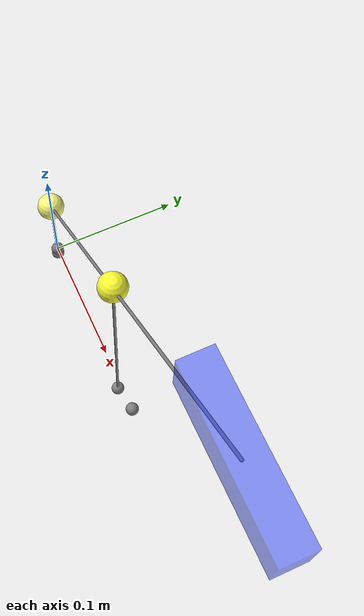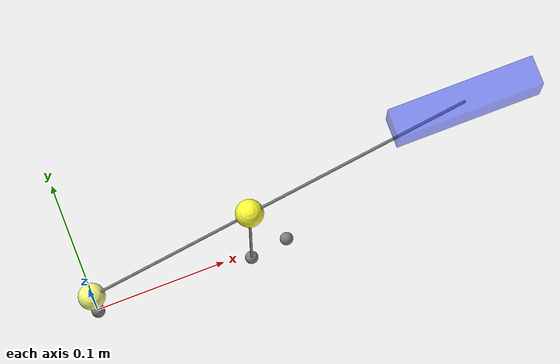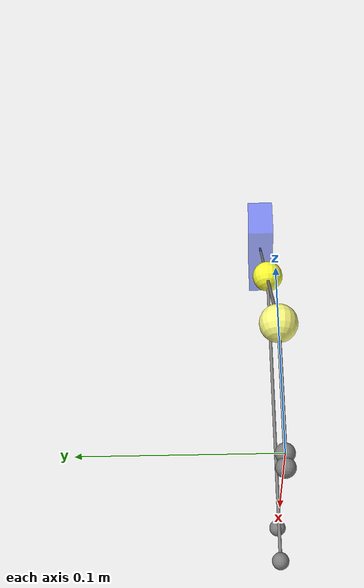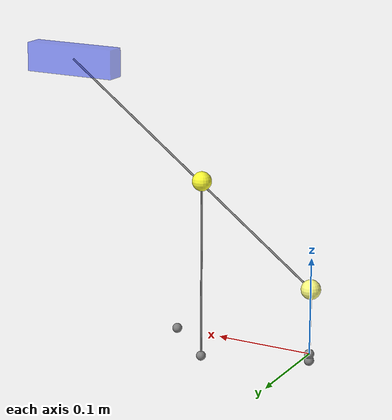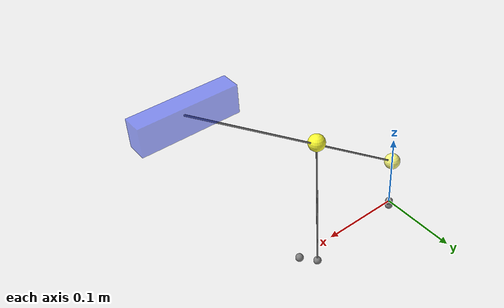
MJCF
<mujoco model="model">
    <visual>
        <headlight ambient="0.5 0.5 0.5" />
    </visual>

    <option gravity="0 0 -9.81" />

    <worldbody>

        <body pos="0 0 0">
            <body pos="0.272 0 0.272" name ='D'>
                <joint name='D' type ='slide' axis='1 0 0'/>
                <geom name = 'D' type="box" size="0.05 0.01 0.015" rgba="0.1 0.2 1 0.5"/>
                <body pos="0 0 0" name = 'L2'>
                    <joint name='L2' type='hinge' axis='0 1 0' pos="0 0 0"/>
                    <geom name="L2" type="capsule" size=".001" fromto="0 0 0  -0.272 0 -0.204"/>
                    <body pos="-0.272 0 -0.204" name = 'A'>
                        <joint/>

                        <geom name="A" type="sphere" size=".01" rgba="1 1 0.5 1"  />

                        <body pos="0 0 0" name = 'L1'>
                            <joint name='L1' type='hinge' range="-45 0" axis='0 1 0' pos="0 0 0"/>

                            <geom name="L1" type="capsule" size=".001" rgba="0.5 0.5 0.5 1" fromto="0 0 0  0 0 -0.075" />

                            <site name="O" pos="0 0 -0.075"/>
                        </body>
                    </body>

                    <body pos="-0.15 0 -0.11" name = 'B'>
                        <joint/>

                        <geom name="B" type="sphere" size=".01" rgba="1 1 0.2 1" />

                        <body pos="0 0 0" name = 'L3'>
                            <joint name='L3' type='hinge' axis='0 1 0' pos="0 0 0"/>

                            <geom name="L3" type="capsule" size=".001" rgba="0.5 0.5 0.5 1" fromto="0 0 0  0 0 -0.1875" />

                            <site name="C" pos="0 0 -0.1875"/>
                        </body>
                    </body>
                </body>

            </body>

        </body>

        <site name="O_fix" pos="0 0 0"/>

        <site name="C_fix" pos="0.15 0 0"/>

    </worldbody>

    <actuator>
        <position name="D_actuator" joint="D" gear="1"/>
    </actuator>

    <equality>
        <connect site1="O_fix" site2="O"/>
        <connect site1="C_fix" site2="C"/>
    </equality>

</mujoco>
